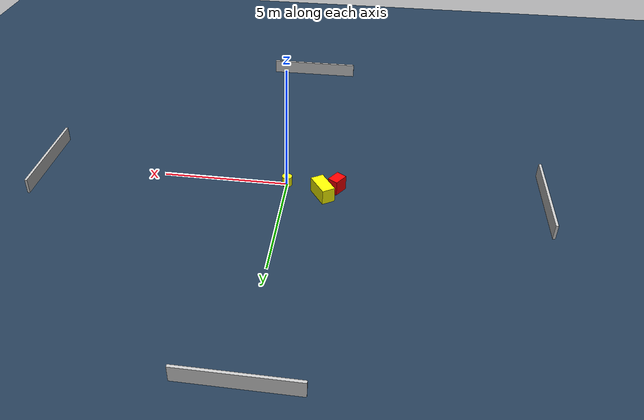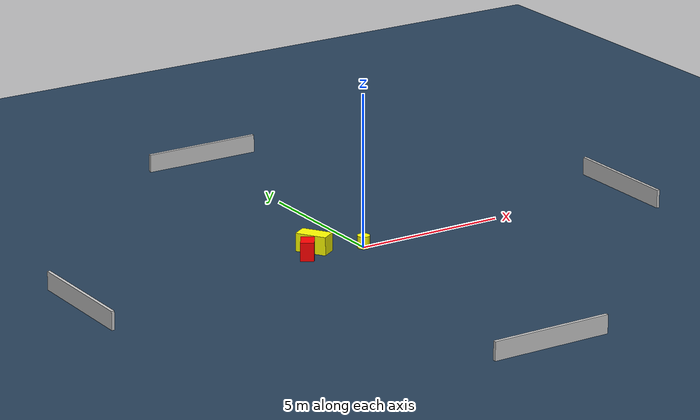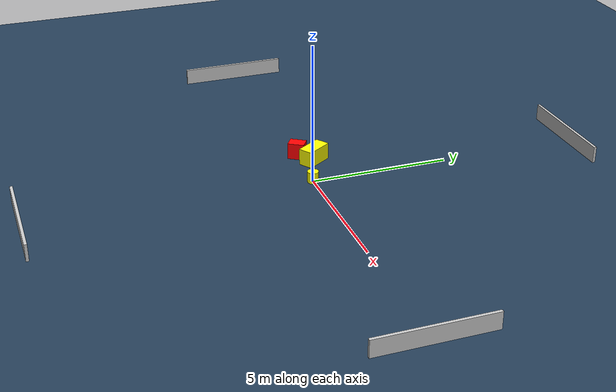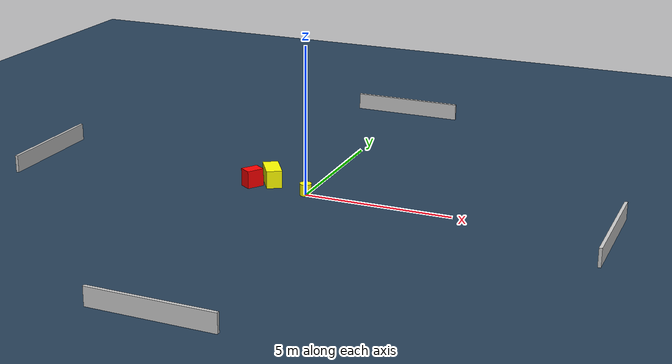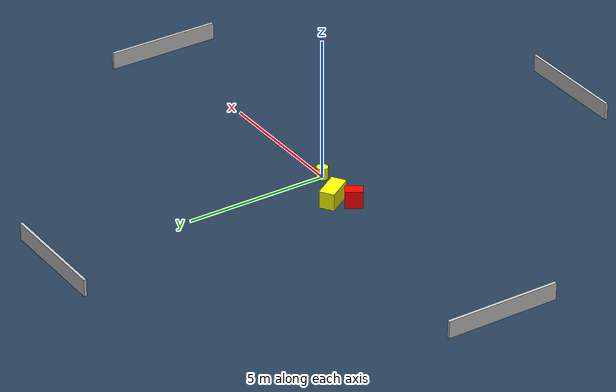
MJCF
<?xml version="1.0" ?>
<mujoco model="generated_environment">
  <option timestep="0.01" integrator="RK4" cone="elliptic"/>
  <default>
    <geom density="1"/>
  </default>
  <asset>
    <texture builtin="gradient" height="3072" name="skybox" rgb1="0.3 0.5 0.7" rgb2="0 0 0" type="skybox" width="512"/>
    <texture builtin="checker" height="300" name="groundplane" rgb1="0.2 0.3 0.4" rgb2="0.1 0.2 0.3" type="2d" width="300"/>
    <material name="groundplane" reflectance="0.2" texrepeat="5 5" texture="groundplane"/>
  </asset>
  <worldbody>
    <light dir="0 0 -1" directional="true" pos="0 0 1.5"/>
    <geom condim="3" friction="0.5 0.005 0.001" material="groundplane" name="floor" pos="0 0 0" size="0 0 0.05" type="plane"/>
    <body name="walls">
      <geom name="wall_1" condim="4" pos="-10.0 0.0 0.3" rgba="0.800000011920929 0.800000011920929 0.800000011920929 1.0" size="0.05 2.0 0.3" type="box"/>
      <geom name="wall_2" condim="4" pos="10.0 0.0 0.3" rgba="0.800000011920929 0.800000011920929 0.800000011920929 1.0" size="0.05 2.0 0.3" type="box"/>
      <geom name="wall_3" condim="4" pos="0.0 -10.0 0.3" rgba="0.800000011920929 0.800000011920929 0.800000011920929 1.0" size="2.0 0.05 0.3" type="box"/>
      <geom name="wall_4" condim="4" pos="0.0 10.0 0.3" rgba="0.800000011920929 0.800000011920929 0.800000011920929 1.0" size="2.0 0.05 0.3" type="box"/>
    </body>
    <body name="robot">
      <joint name="joint_x" type="slide" pos="0 0 0" axis="1 0 0"/>
      <joint name="joint_y" type="slide" pos="0 0 0" axis="0 1 0"/>
      <geom name="robot" type="cylinder" pos="0.0 0.0 0.2" size="0.2 0.2 0.0" mass="5.0" friction="1.0 0.005 0.0001" condim="4" rgba="1.0 1.0 0.0 1.0"/>
    </body>
    <body name="obstacle_1_movable">
      <geom name="obstacle_1_movable" condim="4" pos="-1.4730938790642727 0.5568003706116961 0.3" euler="0 0 302.8953788018914" friction="0.0 0.005 0.001" rgba="1.0 1.0 0.0 1.0" size="0.5097191423473673 0.26420728008729033 0.3" type="box" mass="0.1"/>
      <joint type="free"/>
    </body>
    <body name="obstacle_2_static">
      <geom name="obstacle_2_static" condim="4" pos="-1.9955708602419164 0.10187727637294995 0.3" euler="0 0 146.59820334733112" friction="0.0 0.005 0.001" rgba="1.0 0.0 0.0 1.0" size="0.21572615542201412 0.2984291257266319 0.3" type="box"/>
    </body>
  </worldbody>
  <actuator>
    <motor name="actuator_x" joint="joint_x" gear="1" ctrlrange="-1 1"/>
    <motor name="actuator_y" joint="joint_y" gear="1" ctrlrange="-1 1"/>
  </actuator>
</mujoco>
